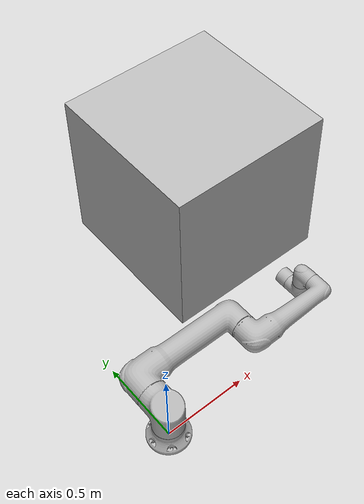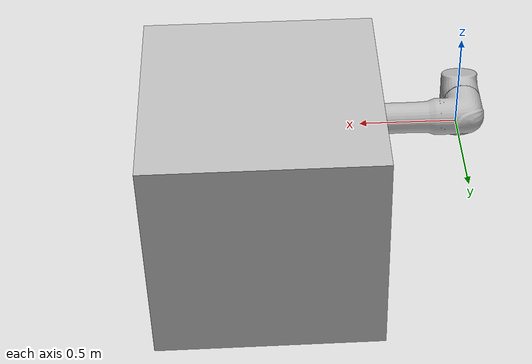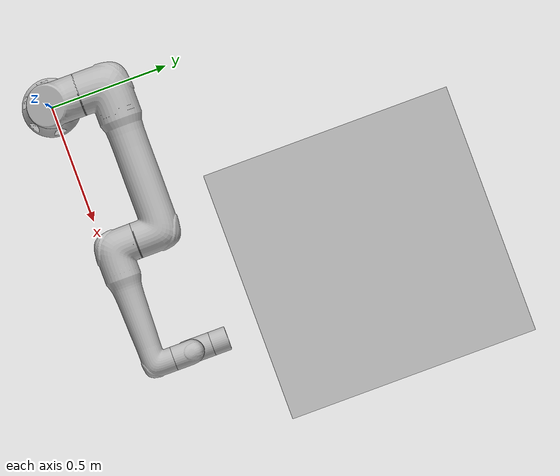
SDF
<sdf version='1.11'>
    <world name="ur3e_position_world">

    <light type="directional" name="sun">
        <cast_shadows>true</cast_shadows>
        <pose>0 0 5 0 0 0</pose>
        <diffuse>0.8 0.8 0.8 1</diffuse>
        <specular>0.2 0.2 0.2 1</specular>
        <direction>-0.5 -0.1 -0.9</direction>
        <intensity>2.0</intensity>
    </light>

    <model name="box">
      <pose relative_to='ur30_1::ur30_1_position_controller::ur30_1::wrist_3_joint'>0 0 0 0 0 0</pose>
      <link name="box_link">
        <inertial>
          <inertia>
            <ixx>0.16666</ixx>
            <ixy>0</ixy>
            <ixz>0</ixz>
            <iyy>0.16666</iyy>
            <iyz>0</iyz>
            <izz>0.16666</izz>
          </inertia>
          <mass>1.0</mass>
        </inertial>
        <collision name="box_collision">
          <geometry>
            <box>
              <size>0.05 0.05 0.05</size>
            </box>
          </geometry>
        </collision>

        <visual name="box_visual">
          <geometry>
            <box>
              <size>0.05 0.05 0.05</size>
            </box>
          </geometry>
          <material>
            <ambient>1 0 0 1</ambient>
            <diffuse>1 0 0 1</diffuse>
            <specular>1 0 0 1</specular>
          </material>
        </visual>
      </link>
    </model>

    <model name="ur30_1">

        <include>
            <name>ur30_1_position_controller</name>
            <static>false</static>
            <uri>model://ur30_position_controller.sdf</uri>
        </include>

        <joint name='base_joint' type='fixed'>
            <pose relative_to='__model__'>0 0 0 0 0 0</pose>
            <parent>world</parent>
            <child>ur30_1_position_controller::ur30_1::base_link</child>
        </joint>

    </model>

    <joint name='eff_connection' type='prismatic'>
        <pose relative_to='ur30_1::ur30_1_position_controller::ur30_1::wrist_3_joint'>0 0 0.2 0 0 0</pose>
        <parent>ur30_1::ur30_1_position_controller::ur30_1::wrist_3_link</parent>
        <child>box::box_link</child>
        <axis>
            <dynamics>
                <spring_stiffness>10000</spring_stiffness>
            </dynamics>
            <limit>
                <upper>0.1</upper>
                <lower>-0.1</lower>
            </limit>
        </axis>
    </joint>

    <model name="my_model">
    <pose>1.0 1.0 0.5 0 0 0</pose>
    <static>true</static>
    <link name="link">
      <inertial>
        <mass>1.0</mass>
        <inertia> <!-- inertias are tricky to compute -->
          <!-- http://gazebosim.org/tutorials?tut=inertia&cat=build_robot -->
          <ixx>0.083</ixx>       <!-- for a box: ixx = 0.083 * mass * (y*y + z*z) -->
          <ixy>0.0</ixy>         <!-- for a box: ixy = 0 -->
          <ixz>0.0</ixz>         <!-- for a box: ixz = 0 -->
          <iyy>0.083</iyy>       <!-- for a box: iyy = 0.083 * mass * (x*x + z*z) -->
          <iyz>0.0</iyz>         <!-- for a box: iyz = 0 -->
          <izz>0.083</izz>       <!-- for a box: izz = 0.083 * mass * (x*x + y*y) -->
        </inertia>
      </inertial>
      <collision name="collision">
        <geometry>
          <box>
            <size>1 1 1</size>
          </box>
        </geometry>
      </collision>
      <visual name="visual">
        <geometry>
          <box>
            <size>1 1 1</size>
          </box>
        </geometry>
      </visual>
    </link>
  </model>

    </world>
</sdf>

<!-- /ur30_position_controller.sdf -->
<sdf version='1.11'>

    <model name="ur30_position_controller">

    <include>
        <name>ur30_1</name>
        <static>false</static>
        <uri>model://ur30.sdf</uri>

        <plugin
        filename="gz-sim-joint-position-controller-system"
        name="gz::sim::systems::JointPositionController">
            <joint_name>shoulder_pan_joint</joint_name>
            <use_velocity_commands>True</use_velocity_commands>
            <cmd_max>0.25</cmd_max>
        </plugin>

        <plugin
        filename="gz-sim-joint-position-controller-system"
        name="gz::sim::systems::JointPositionController">
            <joint_name>shoulder_lift_joint</joint_name>
            <use_velocity_commands>True</use_velocity_commands>
            <cmd_max>0.25</cmd_max>
        </plugin>

        <plugin
        filename="gz-sim-joint-position-controller-system"
        name="gz::sim::systems::JointPositionController">
            <joint_name>elbow_joint</joint_name>
            <use_velocity_commands>True</use_velocity_commands>
            <cmd_max>0.25</cmd_max>
        </plugin>

        <plugin
        filename="gz-sim-joint-position-controller-system"
        name="gz::sim::systems::JointPositionController">
            <joint_name>wrist_1_joint</joint_name>
            <use_velocity_commands>True</use_velocity_commands>
            <cmd_max>0.25</cmd_max>
        </plugin>

        <plugin
        filename="gz-sim-joint-position-controller-system"
        name="gz::sim::systems::JointPositionController">
            <joint_name>wrist_2_joint</joint_name>
            <use_velocity_commands>True</use_velocity_commands>
            <cmd_max>0.25</cmd_max>
        </plugin>

        <plugin
        filename="gz-sim-joint-position-controller-system"
        name="gz::sim::systems::JointPositionController">
            <joint_name>wrist_3_joint</joint_name>
            <use_velocity_commands>True</use_velocity_commands>
            <cmd_max>0.25</cmd_max>
        </plugin>

        <plugin
        filename="gz-sim-joint-state-publisher-system"
        name="gz::sim::systems::JointStatePublisher">
        </plugin>

    </include>

    </model>

</sdf>

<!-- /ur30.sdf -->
<sdf version='1.11'>
  <model name='ur30_1'>
    <joint name='base_joint' type='fixed'>
      <pose relative_to='__model__'>0 0 0 0 0 0</pose>
      <parent>world</parent>
      <child>base_link</child>
    </joint>
    <link name='base_link'>
      <pose relative_to='base_joint'>0 0 0 0 0 0</pose>
      <inertial>
        <pose>0 0 0 0 0 0</pose>
        <mass>4</mass>
        <inertia>
          <ixx>0.0061063308907999998</ixx>
          <ixy>0</ixy>
          <ixz>0</ixz>
          <iyy>0.0061063308907999998</iyy>
          <iyz>0</iyz>
          <izz>0.01125</izz>
        </inertia>
      </inertial>
      <collision name='base_link_inertia_collision'>
        <pose>0 0 0 0 0 -2.4492935982947059e-16</pose>
        <geometry>
          <mesh>
            <scale>1 1 1</scale>
            <uri>./vendor/Universal_Robots_ROS2_Description/meshes/ur20/collision/base.stl</uri>
          </mesh>
        </geometry>
      </collision>
      <visual name='base_link_inertia_visual'>
        <pose>0 0 0 0 0 -2.4492935982947059e-16</pose>
        <geometry>
          <mesh>
            <scale>1 1 1</scale>
            <uri>./vendor/Universal_Robots_ROS2_Description/meshes/ur20/visual/base.dae</uri>
          </mesh>
        </geometry>
      </visual>
    </link>
    <joint name='shoulder_pan_joint' type='revolute'>
      <pose relative_to='base_link'>0 0 0.23630000000000001 0 0 3.1415926535897931</pose>
      <parent>base_link</parent>
      <child>shoulder_link</child>
      <axis>
        <xyz>0 0 1</xyz>
        <limit>
          <lower>-6.2831853071795862</lower>
          <upper>6.2831853071795862</upper>
          <effort>738</effort>
          <velocity>2.0943951023931948</velocity>
        </limit>
        <dynamics>
          <damping>0</damping>
          <friction>0</friction>
          <spring_reference>0</spring_reference>
          <spring_stiffness>0</spring_stiffness>
        </dynamics>
      </axis>
    </joint>
    <link name='shoulder_link'>
      <pose relative_to='shoulder_pan_joint'>0 0 0 0 0 0</pose>
      <inertial>
        <pose>-0.0001 -0.0068999999999999999 -0.059999999999999998 1.570796326794897 0 0</pose>
        <mass>16.343</mass>
        <inertia>
          <ixx>0.033509999999999998</ixx>
          <ixy>2.0000000000000002e-05</ixy>
          <ixz>-1.0000000000000001e-05</ixz>
          <iyy>0.033739999999999999</iyy>
          <iyz>0.0037399999999999998</iyz>
          <izz>0.021000000000000001</izz>
        </inertia>
      </inertial>
      <collision name='shoulder_link_collision'>
        <pose>0 0 0 0 0 3.1415926535897931</pose>
        <geometry>
          <mesh>
            <scale>1 1 1</scale>
            <uri>./vendor/Universal_Robots_ROS2_Description/meshes/ur20/collision/shoulder.stl</uri>
          </mesh>
        </geometry>
      </collision>
      <visual name='shoulder_link_visual'>
        <pose>0 0 0 0 0 3.1415926535897931</pose>
        <geometry>
          <mesh>
            <scale>1 1 1</scale>
            <uri>./vendor/Universal_Robots_ROS2_Description/meshes/ur20/visual/shoulder.dae</uri>
          </mesh>
        </geometry>
      </visual>
    </link>
    <joint name='shoulder_lift_joint' type='revolute'>
      <pose relative_to='shoulder_link'>0 0 0 1.5707963270000003 0 0</pose>
      <parent>shoulder_link</parent>
      <child>upper_arm_link</child>
      <axis>
        <xyz>0 0 1</xyz>
        <limit>
          <lower>-6.2831853071795862</lower>
          <upper>6.2831853071795862</upper>
          <effort>738</effort>
          <velocity>2.0943951023931948</velocity>
        </limit>
        <dynamics>
          <damping>0</damping>
          <friction>0</friction>
          <spring_reference>0</spring_reference>
          <spring_stiffness>0</spring_stiffness>
        </dynamics>
      </axis>
    </joint>
    <link name='upper_arm_link'>
      <pose relative_to='shoulder_lift_joint'>0 0 0 0 0 0</pose>
      <inertial>
        <pose>-0.24759999999999999 0 0.21029999999999999 0 0 0</pose>
        <mass>28.542000000000002</mass>
        <inertia>
          <ixx>0.027959999999999999</ixx>
          <ixy>-0.0001</ixy>
          <ixz>-0.0071999999999999998</ixz>
          <iyy>0.47558</iyy>
          <iyz>3.0000000000000001e-05</iyz>
          <izz>0.47635</izz>
        </inertia>
      </inertial>
      <collision name='upper_arm_link_collision'>
        <pose>0 0 0.26000000000000001 1.5707963267948959 5.5511151231257827e-17 -1.5707963267948959</pose>
        <geometry>
          <mesh>
            <scale>1 1 1</scale>
            <uri>./vendor/Universal_Robots_ROS2_Description/meshes/ur30/collision/upperarm.stl</uri>
          </mesh>
        </geometry>
      </collision>
      <visual name='upper_arm_link_visual'>
        <pose>0 0 0.26000000000000001 1.5707963267948959 5.5511151231257827e-17 -1.5707963267948959</pose>
        <geometry>
          <mesh>
            <scale>1 1 1</scale>
            <uri>./vendor/Universal_Robots_ROS2_Description/meshes/ur30/visual/upperarm.dae</uri>
          </mesh>
        </geometry>
      </visual>
    </link>
    <joint name='elbow_joint' type='revolute'>
      <pose relative_to='upper_arm_link'>-0.63700000000000001 0 0 0 0 0</pose>
      <parent>upper_arm_link</parent>
      <child>forearm_link</child>
      <axis>
        <xyz>0 0 1</xyz>
        <limit>
          <lower>-3.1415926535897931</lower>
          <upper>3.1415926535897931</upper>
          <effort>433</effort>
          <velocity>2.617993877991494</velocity>
        </limit>
        <dynamics>
          <damping>0</damping>
          <friction>0</friction>
          <spring_reference>0</spring_reference>
          <spring_stiffness>0</spring_stiffness>
        </dynamics>
      </axis>
    </joint>
    <link name='forearm_link'>
      <pose relative_to='elbow_joint'>0 0 0 0 0 0</pose>
      <inertial>
        <pose>-0.27800000000000002 0 0.062899999999999998 0 0 0</pose>
        <mass>7.1559999999999997</mass>
        <inertia>
          <ixx>0.01091</ixx>
          <ixy>6.0000000000000002e-05</ixy>
          <ixz>0.010120000000000001</ixz>
          <iyy>0.1206</iyy>
          <iyz>1.0000000000000001e-05</iyz>
          <izz>0.11713999999999999</izz>
        </inertia>
      </inertial>
      <collision name='forearm_link_collision'>
        <pose>0 0 0.042999999999999997 1.5707963267948959 5.5511151231257827e-17 -1.5707963267948959</pose>
        <geometry>
          <mesh>
            <scale>1 1 1</scale>
            <uri>./vendor/Universal_Robots_ROS2_Description/meshes/ur30/collision/forearm.stl</uri>
          </mesh>
        </geometry>
      </collision>
      <visual name='forearm_link_visual'>
        <pose>0 0 0.042999999999999997 1.5707963267948959 5.5511151231257827e-17 -1.5707963267948959</pose>
        <geometry>
          <mesh>
            <scale>1 1 1</scale>
            <uri>./vendor/Universal_Robots_ROS2_Description/meshes/ur30/visual/forearm.dae</uri>
          </mesh>
        </geometry>
      </visual>
    </link>
    <joint name='wrist_1_joint' type='revolute'>
      <pose relative_to='forearm_link'>-0.50370000000000004 0 0.20100000000000001 0 0 0</pose>
      <parent>forearm_link</parent>
      <child>wrist_1_link</child>
      <axis>
        <xyz>0 0 1</xyz>
        <limit>
          <lower>-6.2831853071795862</lower>
          <upper>6.2831853071795862</upper>
          <effort>107</effort>
          <velocity>3.6651914291880918</velocity>
        </limit>
        <dynamics>
          <damping>0</damping>
          <friction>0</friction>
          <spring_reference>0</spring_reference>
          <spring_stiffness>0</spring_stiffness>
        </dynamics>
      </axis>
    </joint>
    <link name='wrist_1_link'>
      <pose relative_to='wrist_1_joint'>0 0 0 0 0 0</pose>
      <inertial>
        <pose>0 -0.035299999999999998 -0.0047999999999999996 1.570796326794897 0 0</pose>
        <mass>3.0539999999999998</mass>
        <inertia>
          <ixx>0.0060899999999999999</ixx>
          <ixy>-1.0000000000000001e-05</ixy>
          <ixz>0</ixz>
          <iyy>0.0024499999999999999</iyy>
          <iyz>0.00083000000000000001</iyz>
          <izz>0.00579</izz>
        </inertia>
      </inertial>
      <collision name='wrist_1_link_collision'>
        <pose>0 0 -0.077499999999999999 1.5707963267948959 0 0</pose>
        <geometry>
          <mesh>
            <scale>1 1 1</scale>
            <uri>./vendor/Universal_Robots_ROS2_Description/meshes/ur20/collision/wrist1.stl</uri>
          </mesh>
        </geometry>
      </collision>
      <visual name='wrist_1_link_visual'>
        <pose>0 0 -0.077499999999999999 1.5707963267948959 0 0</pose>
        <geometry>
          <mesh>
            <scale>1 1 1</scale>
            <uri>./vendor/Universal_Robots_ROS2_Description/meshes/ur20/visual/wrist1.dae</uri>
          </mesh>
        </geometry>
      </visual>
    </link>
    <joint name='wrist_2_joint' type='revolute'>
      <pose relative_to='wrist_1_link'>0 -0.1593 -3.2672976162492252e-11 1.5707963270000003 0 0</pose>
      <parent>wrist_1_link</parent>
      <child>wrist_2_link</child>
      <axis>
        <xyz>0 0 1</xyz>
        <limit>
          <lower>-6.2831853071795862</lower>
          <upper>6.2831853071795862</upper>
          <effort>107</effort>
          <velocity>3.6651914291880918</velocity>
        </limit>
        <dynamics>
          <damping>0</damping>
          <friction>0</friction>
          <spring_reference>0</spring_reference>
          <spring_stiffness>0</spring_stiffness>
        </dynamics>
      </axis>
    </joint>
    <link name='wrist_2_link'>
      <pose relative_to='wrist_2_joint'>0 0 0 0 0 0</pose>
      <inertial>
        <pose>0 0.034099999999999998 -0.0045999999999999999 -1.570796326794897 0 0</pose>
        <mass>3.1259999999999999</mass>
        <inertia>
          <ixx>0.0038899999999999998</ixx>
          <ixy>1.0000000000000001e-05</ixy>
          <ixz>0</ixz>
          <iyy>0.0021900000000000001</iyy>
          <iyz>-0.00044999999999999999</iyz>
          <izz>0.00363</izz>
        </inertia>
      </inertial>
      <collision name='wrist_2_link_collision'>
        <pose>0 0 -0.074899999999999994 0 0 0</pose>
        <geometry>
          <mesh>
            <scale>1 1 1</scale>
            <uri>./vendor/Universal_Robots_ROS2_Description/meshes/ur20/collision/wrist2.stl</uri>
          </mesh>
        </geometry>
      </collision>
      <visual name='wrist_2_link_visual'>
        <pose>0 0 -0.074899999999999994 0 0 0</pose>
        <geometry>
          <mesh>
            <scale>1 1 1</scale>
            <uri>./vendor/Universal_Robots_ROS2_Description/meshes/ur20/visual/wrist2.dae</uri>
          </mesh>
        </geometry>
      </visual>
    </link>
    <joint name='wrist_3_joint' type='revolute'>
      <pose relative_to='wrist_2_link'>0 0.15429999999999999 -3.1647459019915603e-11 -1.5707963270000003 1.2246467991473527e-16 -1.2246467991473527e-16</pose>
      <parent>wrist_2_link</parent>
      <child>wrist_3_link</child>
      <axis>
        <xyz>0 0 1</xyz>
        <limit>
          <lower>-6.2831853071795862</lower>
          <upper>6.2831853071795862</upper>
          <effort>107</effort>
          <velocity>3.6651914291880918</velocity>
        </limit>
        <dynamics>
          <damping>0</damping>
          <friction>0</friction>
          <spring_reference>0</spring_reference>
          <spring_stiffness>0</spring_stiffness>
        </dynamics>
      </axis>
    </joint>
    <link name='wrist_3_link'>
      <pose relative_to='wrist_3_joint'>0 0 0 0 0 0</pose>
      <inertial>
        <pose>0 0 -0.0293 0 0 0</pose>
        <mass>0.92600000000000005</mass>
        <inertia>
          <ixx>0.00117</ixx>
          <ixy>0</ixy>
          <ixz>0</ixz>
          <iyy>0.0011800000000000001</iyy>
          <iyz>0</iyz>
          <izz>0.00084000000000000003</izz>
        </inertia>
      </inertial>
      <collision name='wrist_3_link_collision'>
        <pose>0 0 -0.070000000000000007 1.5707963267948959 0 0</pose>
        <geometry>
          <mesh>
            <scale>1 1 1</scale>
            <uri>./vendor/Universal_Robots_ROS2_Description/meshes/ur20/collision/wrist3.stl</uri>
          </mesh>
        </geometry>
      </collision>
      <visual name='wrist_3_link_visual'>
        <pose>0 0 -0.070000000000000007 1.5707963267948959 0 0</pose>
        <geometry>
          <mesh>
            <scale>1 1 1</scale>
            <uri>./vendor/Universal_Robots_ROS2_Description/meshes/ur20/visual/wrist3.dae</uri>
          </mesh>
        </geometry>
      </visual>
    </link>
    <frame name='base_link-base_fixed_joint' attached_to='base_link'>
      <pose>0 0 0 0 0 3.1415926535897931</pose>
    </frame>
    <frame name='base' attached_to='base_link-base_fixed_joint'>
      <pose>0 0 0 0 0 0</pose>
    </frame>
    <frame name='base_link-base_link_inertia' attached_to='base_link'>
      <pose>0 0 0 0 0 3.1415926535897931</pose>
    </frame>
    <frame name='base_link_inertia' attached_to='base_link-base_link_inertia'>
      <pose>0 0 0 0 0 0</pose>
    </frame>
    <frame name='flange-tool0' attached_to='flange'>
      <pose>0 0 0 1.5707963267948959 -5.5511151231257827e-17 1.5707963267948959</pose>
    </frame>
    <frame name='tool0' attached_to='flange-tool0'>
      <pose>0 0 0 0 0 0</pose>
    </frame>
    <frame name='wrist_3-flange' attached_to='wrist_3_link'>
      <pose>0 0 0 -1.5707963267948957 -1.5707963267948966 0</pose>
    </frame>
    <frame name='flange' attached_to='wrist_3-flange'>
      <pose>0 0 0 0 0 0</pose>
    </frame>
    <frame name='wrist_3_link-ft_frame' attached_to='wrist_3_link'>
      <pose>0 0 0 3.1415926535897931 0 0</pose>
    </frame>
    <frame name='ft_frame' attached_to='wrist_3_link-ft_frame'>
      <pose>0 0 0 0 0 0</pose>
    </frame>

</model>
</sdf>
